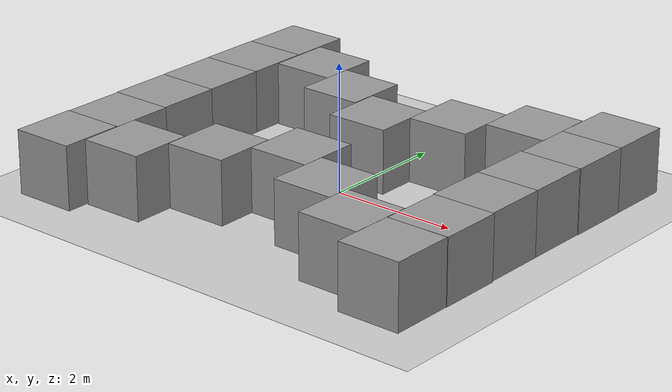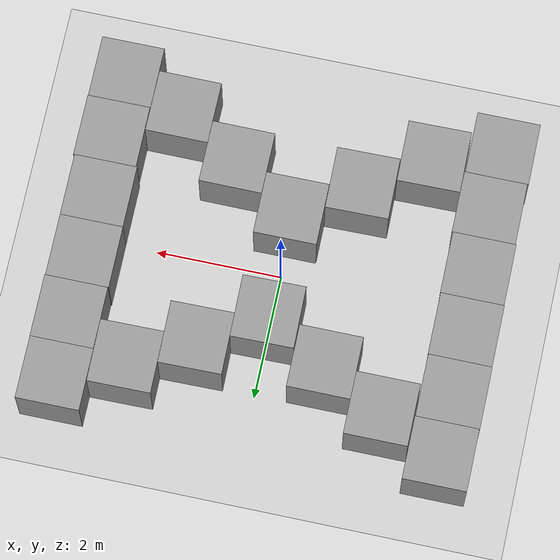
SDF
<sdf version="1.4">
 <world name="default">
  <light name="sun" type="directional">
   <pose>0 0 10 0 -0 0</pose>
   <diffuse>0.8 0.8 0.8 1</diffuse>
   <specular>0.2 0.2 0.2 1</specular>
   <attenuation>
    <range>1000</range>
    <constant>0.9</constant>
    <linear>0.01</linear>
    <quadratic>0.001</quadratic>
   </attenuation>
   <direction>-0.5 0.1 -0.9</direction>
  </light>
  <model name="ground_plane">
   <static>1</static>
   <link name="link">
    <collision name="collision">
     <geometry><plane><normal>0 0 1</normal><size>100 100</size></plane></geometry>
     <surface><friction><ode><mu>100</mu><mu2>50</mu2></ode></friction></surface>
    </collision>
    <visual name="visual">
     <cast_shadows>0</cast_shadows>
     <geometry><plane><normal>0 0 1</normal><size>100 100</size></plane></geometry>
     <material>
      <script><uri>file://media/materials/scripts/gazebo.material</uri><name>Gazebo/Grey</name></script>
     </material>
    </visual>
    <velocity_decay><linear>0</linear><angular>0</angular></velocity_decay>
   </link>
  </model>
  <physics type="ode">
   <max_step_size>0.001</max_step_size>
   <real_time_factor>1</real_time_factor>
   <real_time_update_rate>1000</real_time_update_rate>
   <gravity>0 0 -9.8</gravity>
  </physics>
  <scene><ambient>0.4 0.4 0.4 1</ambient><background>0.7 0.7 0.7 1</background><shadows>1</shadows></scene>
  <spherical_coordinates>
   <surface_model>EARTH_WGS84</surface_model>
   <latitude_deg>0</latitude_deg>
   <longitude_deg>0</longitude_deg>
   <elevation>0</elevation>
   <heading_deg>0</heading_deg>
  </spherical_coordinates>
  <model name="unit_box_1">
   <pose>0.017609 0.854715 0.5 0 -0 0.01202</pose>
   <link name="link">
    <inertial>
     <mass>1</mass>
     <inertia><ixx>1</ixx><ixy>0</ixy><ixz>0</ixz><iyy>1</iyy><iyz>0</iyz><izz>1</izz></inertia>
    </inertial>
    <collision name="collision"><geometry><box><size>1 1 1</size></box></geometry></collision>
    <visual name="visual">
     <geometry><box><size>1 1 1</size></box></geometry>
     <material>
      <script><uri>file://media/materials/scripts/gazebo.material</uri><name>Gazebo/Grey</name></script>
     </material>
    </visual>
    <velocity_decay><linear>0</linear><angular>0</angular></velocity_decay>
   </link>
   <static>0</static>
  </model>
  <model name="unit_box_2">
   <pose>0.015 -0.84903 0.5 0 -0 0.003447</pose>
   <link name="link">
    <inertial>
     <mass>1</mass>
     <inertia><ixx>1</ixx><ixy>0</ixy><ixz>0</ixz><iyy>1</iyy><iyz>0</iyz><izz>1</izz></inertia>
    </inertial>
    <collision name="collision"><geometry><box><size>1 1 1</size></box></geometry></collision>
    <visual name="visual">
     <geometry><box><size>1 1 1</size></box></geometry>
     <material>
      <script><uri>file://media/materials/scripts/gazebo.material</uri><name>Gazebo/Grey</name></script>
     </material>
    </visual>
    <velocity_decay><linear>0</linear><angular>0</angular></velocity_decay>
   </link>
   <static>0</static>
  </model>
  <model name="unit_box_3">
   <pose>1.01004 1.49095 0.5 0 -0 0.012015</pose>
   <link name="link">
    <inertial>
     <mass>1</mass>
     <inertia><ixx>1</ixx><ixy>0</ixy><ixz>0</ixz><iyy>1</iyy><iyz>0</iyz><izz>1</izz></inertia>
    </inertial>
    <collision name="collision"><geometry><box><size>1 1 1</size></box></geometry></collision>
    <visual name="visual">
     <geometry><box><size>1 1 1</size></box></geometry>
     <material>
      <script><uri>file://media/materials/scripts/gazebo.material</uri><name>Gazebo/Grey</name></script>
     </material>
    </visual>
    <velocity_decay><linear>0</linear><angular>0</angular></velocity_decay>
   </link>
   <static>0</static>
  </model>
  <model name="unit_box_4">
   <pose>-1 1.45667 0.5 0 0 -2e-06</pose>
   <link name="link">
    <inertial>
     <mass>1</mass>
     <inertia><ixx>1</ixx><ixy>0</ixy><ixz>0</ixz><iyy>1</iyy><iyz>0</iyz><izz>1</izz></inertia>
    </inertial>
    <collision name="collision"><geometry><box><size>1 1 1</size></box></geometry></collision>
    <visual name="visual">
     <geometry><box><size>1 1 1</size></box></geometry>
     <material>
      <script><uri>file://media/materials/scripts/gazebo.material</uri><name>Gazebo/Grey</name></script>
     </material>
    </visual>
    <velocity_decay><linear>0</linear><angular>0</angular></velocity_decay>
   </link>
   <static>0</static>
  </model>
  <model name="unit_box_5">
   <pose>1.016 -1.4909 0.5 0 -0 -0.005374</pose>
   <link name="link">
    <inertial>
     <mass>1</mass>
     <inertia><ixx>1</ixx><ixy>0</ixy><ixz>0</ixz><iyy>1</iyy><iyz>0</iyz><izz>1</izz></inertia>
    </inertial>
    <collision name="collision"><geometry><box><size>1 1 1</size></box></geometry></collision>
    <visual name="visual">
     <geometry><box><size>1 1 1</size></box></geometry>
     <material>
      <script><uri>file://media/materials/scripts/gazebo.material</uri><name>Gazebo/Grey</name></script>
     </material>
    </visual>
    <velocity_decay><linear>0</linear><angular>0</angular></velocity_decay>
   </link>
   <static>0</static>
  </model>
  <model name="unit_box_6">
   <pose>-0.985464 -1.48163 0.5 0 -0 0.011493</pose>
   <link name="link">
    <inertial>
     <mass>1</mass>
     <inertia><ixx>1</ixx><ixy>0</ixy><ixz>0</ixz><iyy>1</iyy><iyz>0</iyz><izz>1</izz></inertia>
    </inertial>
    <collision name="collision"><geometry><box><size>1 1 1</size></box></geometry></collision>
    <visual name="visual">
     <geometry><box><size>1 1 1</size></box></geometry>
     <material>
      <script><uri>file://media/materials/scripts/gazebo.material</uri><name>Gazebo/Grey</name></script>
     </material>
    </visual>
    <velocity_decay><linear>0</linear><angular>0</angular></velocity_decay>
   </link>
   <static>0</static>
  </model>
  <model name="unit_box_7">
   <pose>-3.01354 2.50686 0.5 -0 -0 -0.000285</pose>
   <link name="link">
    <inertial>
     <mass>1</mass>
     <inertia><ixx>1</ixx><ixy>0</ixy><ixz>0</ixz><iyy>1</iyy><iyz>0</iyz><izz>1</izz></inertia>
    </inertial>
    <collision name="collision"><geometry><box><size>1 1 1</size></box></geometry></collision>
    <visual name="visual">
     <geometry><box><size>1 1 1</size></box></geometry>
     <material>
      <script><uri>file://media/materials/scripts/gazebo.material</uri><name>Gazebo/Grey</name></script>
     </material>
    </visual>
    <velocity_decay><linear>0</linear><angular>0</angular></velocity_decay>
   </link>
   <static>0</static>
  </model>
  <model name="unit_box_8">
   <pose>-3.01999 1.50686 0.5 -0 -0 -0.000285</pose>
   <link name="link">
    <inertial>
     <mass>1</mass>
     <inertia><ixx>1</ixx><ixy>0</ixy><ixz>0</ixz><iyy>1</iyy><iyz>0</iyz><izz>1</izz></inertia>
    </inertial>
    <collision name="collision"><geometry><box><size>1 1 1</size></box></geometry></collision>
    <visual name="visual">
     <geometry><box><size>1 1 1</size></box></geometry>
     <material>
      <script><uri>file://media/materials/scripts/gazebo.material</uri><name>Gazebo/Grey</name></script>
     </material>
    </visual>
    <velocity_decay><linear>0</linear><angular>0</angular></velocity_decay>
   </link>
   <static>0</static>
  </model>
  <model name="unit_box_9">
   <pose>-3.01493 0.506855 0.5 0 0 -0.000273</pose>
   <link name="link">
    <inertial>
     <mass>1</mass>
     <inertia><ixx>1</ixx><ixy>0</ixy><ixz>0</ixz><iyy>1</iyy><iyz>0</iyz><izz>1</izz></inertia>
    </inertial>
    <collision name="collision"><geometry><box><size>1 1 1</size></box></geometry></collision>
    <visual name="visual">
     <geometry><box><size>1 1 1</size></box></geometry>
     <material>
      <script><uri>file://media/materials/scripts/gazebo.material</uri><name>Gazebo/Grey</name></script>
     </material>
    </visual>
    <velocity_decay><linear>0</linear><angular>0</angular></velocity_decay>
   </link>
   <static>0</static>
  </model>
  <model name="unit_box_10">
   <pose>-3.00807 -0.493172 0.5 0 -0 -0.000225</pose>
   <link name="link">
    <inertial>
     <mass>1</mass>
     <inertia><ixx>1</ixx><ixy>0</ixy><ixz>0</ixz><iyy>1</iyy><iyz>0</iyz><izz>1</izz></inertia>
    </inertial>
    <collision name="collision"><geometry><box><size>1 1 1</size></box></geometry></collision>
    <visual name="visual">
     <geometry><box><size>1 1 1</size></box></geometry>
     <material>
      <script><uri>file://media/materials/scripts/gazebo.material</uri><name>Gazebo/Grey</name></script>
     </material>
    </visual>
    <velocity_decay><linear>0</linear><angular>0</angular></velocity_decay>
   </link>
   <static>0</static>
  </model>
  <model name="unit_box_11">
   <pose>-2.99345 -1.49318 0.5 0 0 -0.000222</pose>
   <link name="link">
    <inertial>
     <mass>1</mass>
     <inertia><ixx>1</ixx><ixy>0</ixy><ixz>0</ixz><iyy>1</iyy><iyz>0</iyz><izz>1</izz></inertia>
    </inertial>
    <collision name="collision"><geometry><box><size>1 1 1</size></box></geometry></collision>
    <visual name="visual">
     <geometry><box><size>1 1 1</size></box></geometry>
     <material>
      <script><uri>file://media/materials/scripts/gazebo.material</uri><name>Gazebo/Grey</name></script>
     </material>
    </visual>
    <velocity_decay><linear>0</linear><angular>0</angular></velocity_decay>
   </link>
   <static>0</static>
  </model>
  <model name="unit_box_12">
   <pose>-3.00942 -2.49338 0.5 -0 -0 -1e-05</pose>
   <link name="link">
    <inertial>
     <mass>1</mass>
     <inertia><ixx>1</ixx><ixy>0</ixy><ixz>0</ixz><iyy>1</iyy><iyz>0</iyz><izz>1</izz></inertia>
    </inertial>
    <collision name="collision"><geometry><box><size>1 1 1</size></box></geometry></collision>
    <visual name="visual">
     <geometry><box><size>1 1 1</size></box></geometry>
     <material>
      <script><uri>file://media/materials/scripts/gazebo.material</uri><name>Gazebo/Grey</name></script>
     </material>
    </visual>
    <velocity_decay><linear>0</linear><angular>0</angular></velocity_decay>
   </link>
   <static>0</static>
  </model>
  <model name="unit_box_13">
   <pose>3.00701 2.49445 0.5 0 -0 0.000614</pose>
   <link name="link">
    <inertial>
     <mass>1</mass>
     <inertia><ixx>1</ixx><ixy>0</ixy><ixz>0</ixz><iyy>1</iyy><iyz>0</iyz><izz>1</izz></inertia>
    </inertial>
    <collision name="collision"><geometry><box><size>1 1 1</size></box></geometry></collision>
    <visual name="visual">
     <geometry><box><size>1 1 1</size></box></geometry>
     <material>
      <script><uri>file://media/materials/scripts/gazebo.material</uri><name>Gazebo/Grey</name></script>
     </material>
    </visual>
    <velocity_decay><linear>0</linear><angular>0</angular></velocity_decay>
   </link>
   <static>0</static>
  </model>
  <model name="unit_box_16">
   <pose>-2 2 0.5 -0 -0 -1e-06</pose>
   <link name="link">
    <inertial>
     <mass>1</mass>
     <inertia><ixx>1</ixx><ixy>0</ixy><ixz>0</ixz><iyy>1</iyy><iyz>0</iyz><izz>1</izz></inertia>
    </inertial>
    <collision name="collision"><geometry><box><size>1 1 1</size></box></geometry></collision>
    <visual name="visual">
     <geometry><box><size>1 1 1</size></box></geometry>
     <material>
      <script><uri>file://media/materials/scripts/gazebo.material</uri><name>Gazebo/Grey</name></script>
     </material>
    </visual>
    <velocity_decay><linear>0</linear><angular>0</angular></velocity_decay>
   </link>
   <static>0</static>
  </model>
  <model name="unit_box_21">
   <pose>2.00551 2.00533 0.5 0 -0 0.008933</pose>
   <link name="link">
    <inertial>
     <mass>1</mass>
     <inertia><ixx>1</ixx><ixy>0</ixy><ixz>0</ixz><iyy>1</iyy><iyz>0</iyz><izz>1</izz></inertia>
    </inertial>
    <collision name="collision"><geometry><box><size>1 1 1</size></box></geometry></collision>
    <visual name="visual">
     <geometry><box><size>1 1 1</size></box></geometry>
     <material>
      <script><uri>file://media/materials/scripts/gazebo.material</uri><name>Gazebo/Grey</name></script>
     </material>
    </visual>
    <velocity_decay><linear>0</linear><angular>0</angular></velocity_decay>
   </link>
   <static>0</static>
  </model>
  <model name="unit_box_22">
   <pose>-1.98849 -2.14143 0.5 0 -0 0.010007</pose>
   <link name="link">
    <inertial>
     <mass>1</mass>
     <inertia><ixx>1</ixx><ixy>0</ixy><ixz>0</ixz><iyy>1</iyy><iyz>0</iyz><izz>1</izz></inertia>
    </inertial>
    <collision name="collision"><geometry><box><size>1 1 1</size></box></geometry></collision>
    <visual name="visual">
     <geometry><box><size>1 1 1</size></box></geometry>
     <material>
      <script><uri>file://media/materials/scripts/gazebo.material</uri><name>Gazebo/Grey</name></script>
     </material>
    </visual>
    <velocity_decay><linear>0</linear><angular>0</angular></velocity_decay>
   </link>
   <static>0</static>
  </model>
  <model name="unit_box_23">
   <pose>3.01032 1.49445 0.5 0 -0 0.000613</pose>
   <link name="link">
    <inertial>
     <mass>1</mass>
     <inertia><ixx>1</ixx><ixy>0</ixy><ixz>0</ixz><iyy>1</iyy><iyz>0</iyz><izz>1</izz></inertia>
    </inertial>
    <collision name="collision"><geometry><box><size>1 1 1</size></box></geometry></collision>
    <visual name="visual">
     <geometry><box><size>1 1 1</size></box></geometry>
     <material>
      <script><uri>file://media/materials/scripts/gazebo.material</uri><name>Gazebo/Grey</name></script>
     </material>
    </visual>
    <velocity_decay><linear>0</linear><angular>0</angular></velocity_decay>
   </link>
   <static>0</static>
  </model>
  <model name="unit_box_24">
   <pose>2.99981 0.494439 0.5 0 -0 0.0006</pose>
   <link name="link">
    <inertial>
     <mass>1</mass>
     <inertia><ixx>1</ixx><ixy>0</ixy><ixz>0</ixz><iyy>1</iyy><iyz>0</iyz><izz>1</izz></inertia>
    </inertial>
    <collision name="collision"><geometry><box><size>1 1 1</size></box></geometry></collision>
    <visual name="visual">
     <geometry><box><size>1 1 1</size></box></geometry>
     <material>
      <script><uri>file://media/materials/scripts/gazebo.material</uri><name>Gazebo/Grey</name></script>
     </material>
    </visual>
    <velocity_decay><linear>0</linear><angular>0</angular></velocity_decay>
   </link>
   <static>0</static>
  </model>
  <model name="unit_box_25">
   <pose>3.00155 -0.505575 0.5 0 -0 0.000571</pose>
   <link name="link">
    <inertial>
     <mass>1</mass>
     <inertia><ixx>1</ixx><ixy>0</ixy><ixz>0</ixz><iyy>1</iyy><iyz>0</iyz><izz>1</izz></inertia>
    </inertial>
    <collision name="collision"><geometry><box><size>1 1 1</size></box></geometry></collision>
    <visual name="visual">
     <geometry><box><size>1 1 1</size></box></geometry>
     <material>
      <script><uri>file://media/materials/scripts/gazebo.material</uri><name>Gazebo/Grey</name></script>
     </material>
    </visual>
    <velocity_decay><linear>0</linear><angular>0</angular></velocity_decay>
   </link>
   <static>0</static>
  </model>
  <model name="unit_box_26">
   <pose>3.02183 -1.50557 0.5 0 -0 0.00055</pose>
   <link name="link">
    <inertial>
     <mass>1</mass>
     <inertia><ixx>1</ixx><ixy>0</ixy><ixz>0</ixz><iyy>1</iyy><iyz>0</iyz><izz>1</izz></inertia>
    </inertial>
    <collision name="collision"><geometry><box><size>1 1 1</size></box></geometry></collision>
    <visual name="visual">
     <geometry><box><size>1 1 1</size></box></geometry>
     <material>
      <script><uri>file://media/materials/scripts/gazebo.material</uri><name>Gazebo/Grey</name></script>
     </material>
    </visual>
    <velocity_decay><linear>0</linear><angular>0</angular></velocity_decay>
   </link>
   <static>0</static>
  </model>
  <model name="unit_box_27">
   <pose>2.01327 -2.12847 0.5 0 -0 -0.005529</pose>
   <link name="link">
    <inertial>
     <mass>1</mass>
     <inertia><ixx>1</ixx><ixy>0</ixy><ixz>0</ixz><iyy>1</iyy><iyz>0</iyz><izz>1</izz></inertia>
    </inertial>
    <collision name="collision"><geometry><box><size>1 1 1</size></box></geometry></collision>
    <visual name="visual">
     <geometry><box><size>1 1 1</size></box></geometry>
     <material>
      <script><uri>file://media/materials/scripts/gazebo.material</uri><name>Gazebo/Grey</name></script>
     </material>
    </visual>
    <velocity_decay><linear>0</linear><angular>0</angular></velocity_decay>
   </link>
   <static>0</static>
  </model>
  <model name="unit_box_28">
   <pose>3.01412 -2.50568 0.5 0 -0 0.00034</pose>
   <link name="link">
    <inertial>
     <mass>1</mass>
     <inertia><ixx>1</ixx><ixy>0</ixy><ixz>0</ixz><iyy>1</iyy><iyz>0</iyz><izz>1</izz></inertia>
    </inertial>
    <collision name="collision"><geometry><box><size>1 1 1</size></box></geometry></collision>
    <visual name="visual">
     <geometry><box><size>1 1 1</size></box></geometry>
     <material>
      <script><uri>file://media/materials/scripts/gazebo.material</uri><name>Gazebo/Grey</name></script>
     </material>
    </visual>
    <velocity_decay><linear>0</linear><angular>0</angular></velocity_decay>
   </link>
   <static>0</static>
  </model>
 </world>
</sdf>
